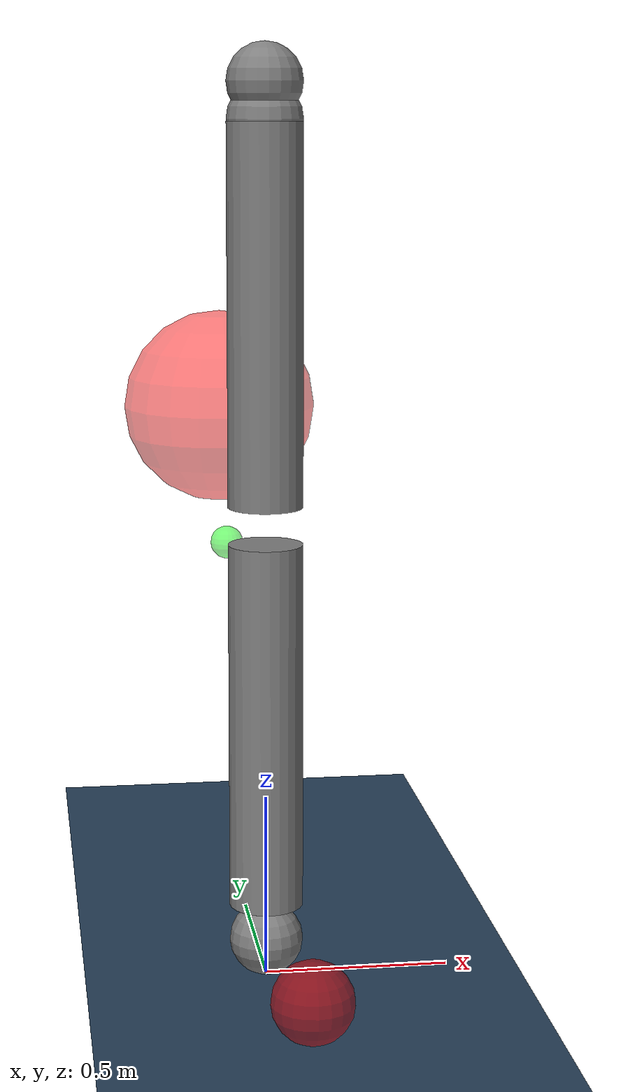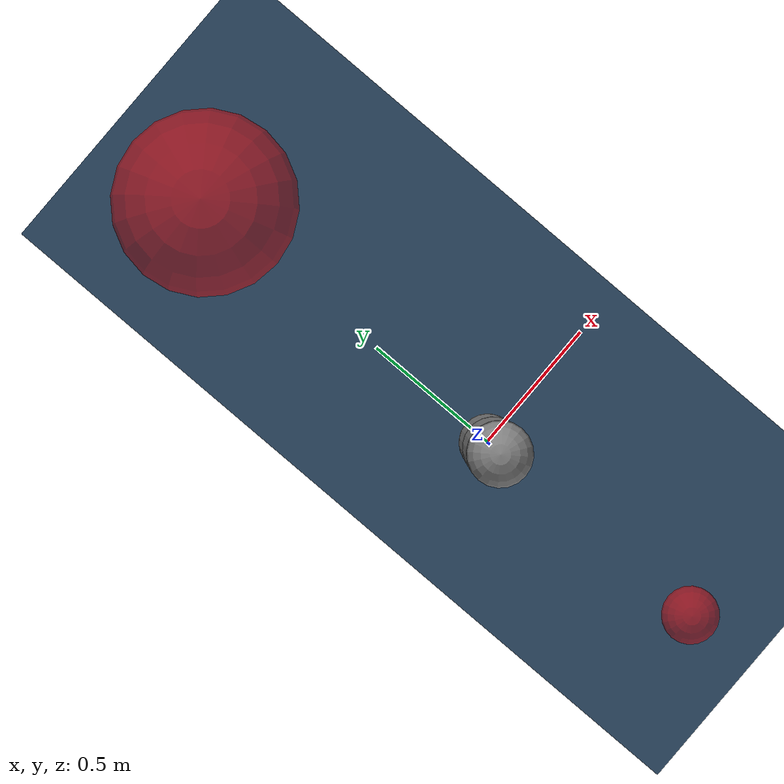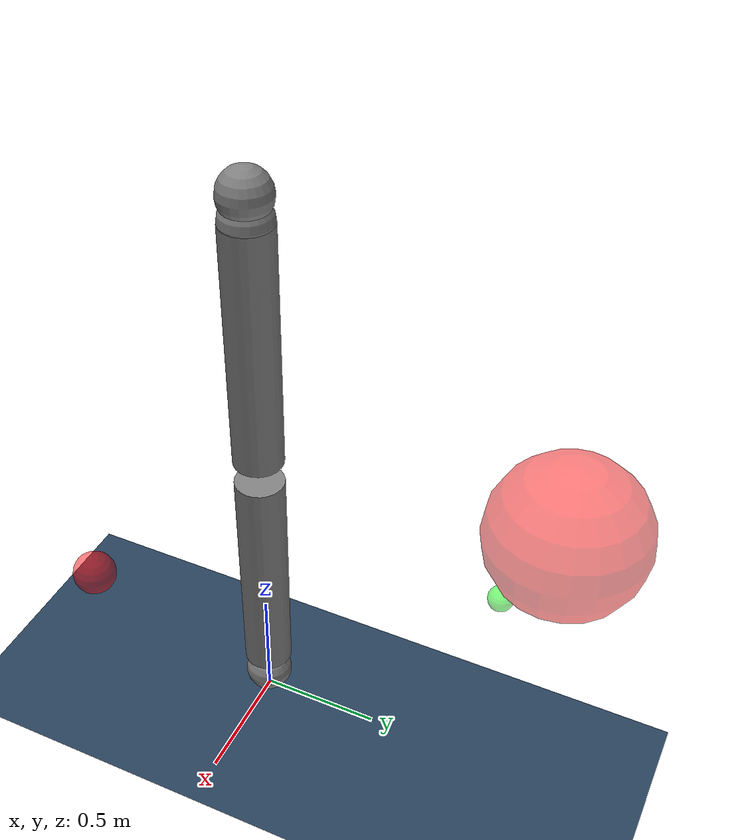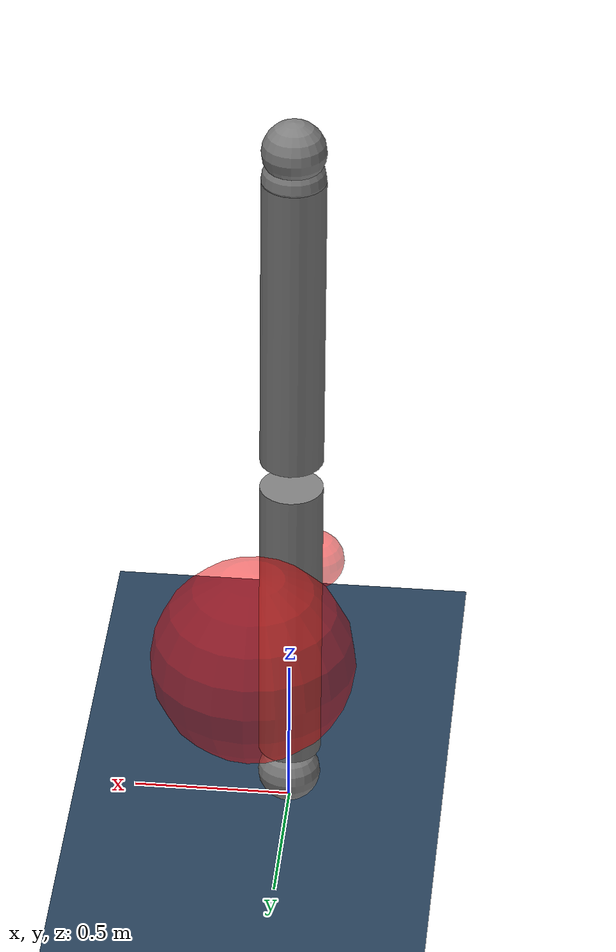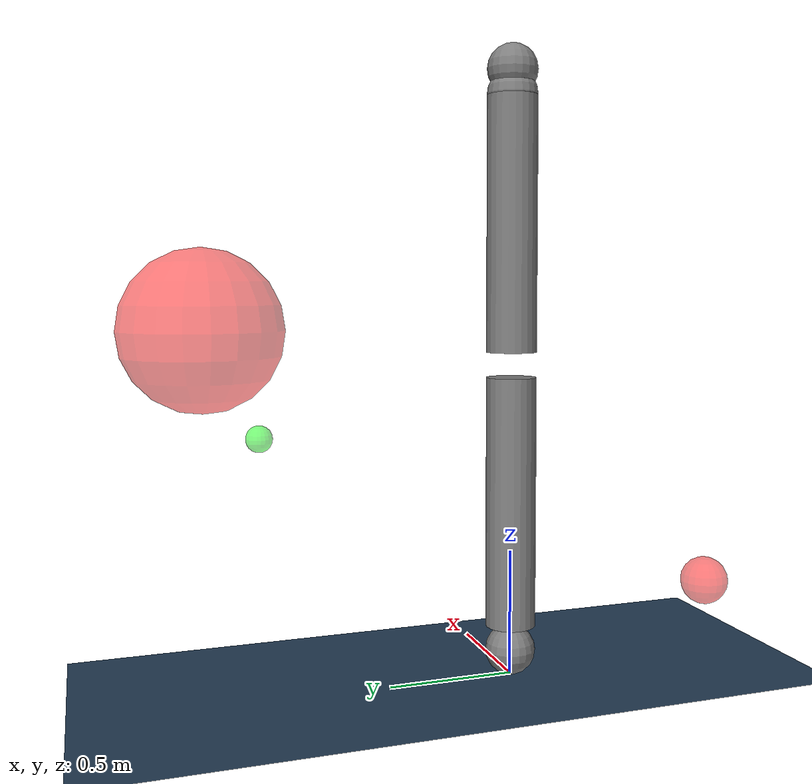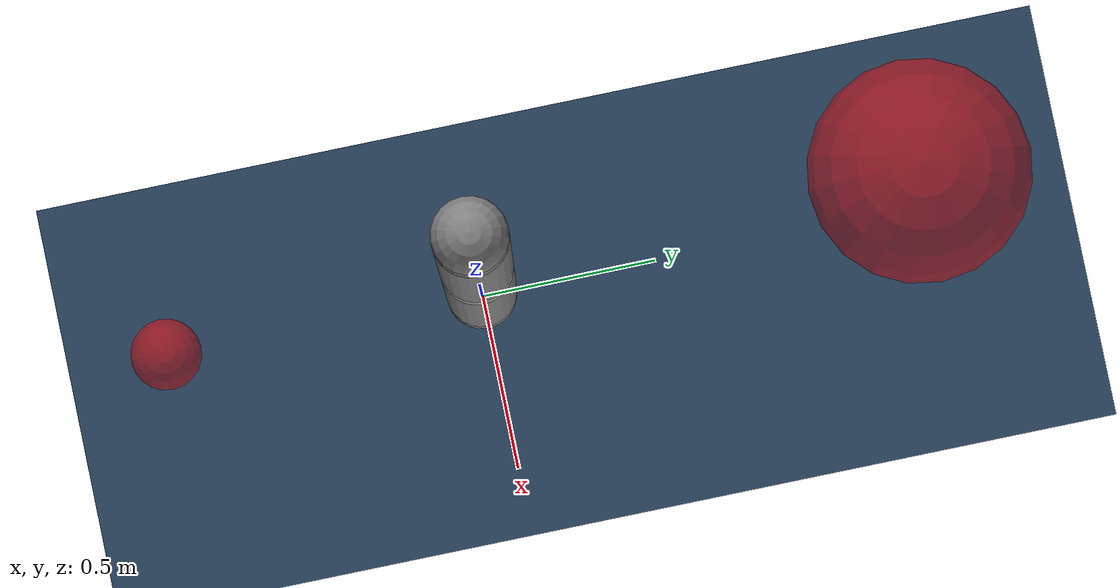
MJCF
<mujoco model="Particle Control">
    <include file="../common.xml"/>
    <size memory="10K"/>

    <custom>
        <!-- agent -->
        <numeric name="task_risk" data="1"/>
        <numeric name="agent_planner" data="0"/>
        <numeric name="agent_horizon" data="0.5"/>
        <numeric name="agent_timestep" data="0.01"/>
        <numeric name="agent_policy_width" data="0.0015"/>
        <numeric name="sampling_spline_points" data="5"/>
        <numeric name="sampling_exploration" data="0.01"/>
        <numeric name="gradient_spline_points" data="5"/>

        <!-- estimator -->
        <numeric name="estimator" data="0"/>
        <numeric name="estimator_sensor_start" data="3"/>
        <numeric name="estimator_number_sensor" data="3"/>
        <numeric name="estimator_timestep" data="0.01"/>
        <numeric name="batch_configuration_length" data="10"/>
        <numeric name="batch_scale_prior" data="1.0e-3"/>
    </custom>

    <sensor>
        <!-- cost -->
        <user name="Position" dim="2" user="0 5.0 0.0 10.0"/>
        <user name="Velocity" dim="2" user="0 0.1 0.0 1.0"/>
        <user name="Control" dim="2" user="0 0.1 0.0 1.0"/>

        <!-- estimator -->
        <jointpos name="x" joint="joint1"/>
        <jointpos name="y" joint="joint2"/>
        <accelerometer name="acc" site="hand"/>

        <!-- trace -->
        <framepos name="trace0" objtype="site" objname="hand"/>

        <!-- residual -->
        <framepos name="position" objtype="site" objname="hand"/>
        <framelinvel name="velocity" objtype="site" objname="hand"/>
    </sensor>

    <visual>
        <headlight diffuse="0.6 0.6 0.6" ambient="0.3 0.3 0.3" specular="0 0 0"/>
        <rgba haze="0.15 0.25 0.35 1"/>
        <global azimuth="120" elevation="-20"/>
    </visual>

    <asset>
        <texture type="skybox" builtin="gradient" rgb1="0.3 0.5 0.7" rgb2="0 0 0" width="512" height="3072"/>
        <texture type="2d" name="groundplane" builtin="checker" mark="edge" rgb1="0.2 0.3 0.4" rgb2="0.1 0.2 0.3"
                 markrgb="0.8 0.8 0.8" width="300" height="300"/>
        <material name="groundplane" texture="groundplane" texuniform="true" texrepeat="5 5" reflectance="0.2"/>
    </asset>

    <worldbody>
        <light pos="0 0 1.5" dir="0 0 -1" directional="true"/>
        <geom name="floor" size="0 0 0.05" type="plane" material="groundplane"/>
        <body name="obstacle_0" pos="0.0 -0.9 0.3">
            <geom type="sphere" name="obstacle_0" size=".1" rgba="0 0 0 0"/>
        </body>
        <body name="obstacle_0_mocap" mocap="true" pos="0.0 -0.9 0.3">
            <geom type="sphere" name="obstacle_0_mocap" size=".1" rgba="1 0 0 .5"/>
        </body>

        <body name="obstacle_1" pos="0.0 1.2 1.4">
            <geom type="sphere" name="obstacle_1" size=".3" rgba="0 0 0 0"/>
        </body>
        <body name="obstacle_1_mocap" mocap="true" pos="0.0 1.2 1.4">
            <geom type="sphere" name="obstacle_1_mocap" size=".3" rgba="1 0 0 .5"/>
        </body>

        <!-- For target dynamics info tracking, which mocap does not provide -->
        <body name="target" pos="0.0 1.0 1.0" quat="1 0 0 0">
            <geom type="sphere" name="target" size=".05" rgba="0 0 0 0"/>
        </body>
        <body name="target_mocap" mocap="true" pos="0.0 1.0 1.0">
            <geom type="sphere" name="target_mocap" size=".05" rgba="0 1 0 .5"/>
        </body>
    </worldbody>

    <include file="planar_2dof.xml"/>
</mujoco>

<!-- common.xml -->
<mujoco>

    <visual>
        <headlight ambient=".4 .4 .4" diffuse=".8 .8 .8" specular="0.1 0.1 0.1"/>
        <map znear=".01"/>
        <quality shadowsize="2048"/>
        <global elevation="-15"/>
    </visual>

    <asset>
        <texture name="blue_grid" type="2d" builtin="checker" rgb1=".02 .14 .44" rgb2=".27 .55 1" width="300" height="300" mark="edge" markrgb="1 1 1"/>
        <material name="blue_grid" texture="blue_grid" texrepeat="1 1" texuniform="true" reflectance=".2"/>

        <texture name="grey_grid" type="2d" builtin="checker" rgb1=".26 .26 .26" rgb2=".6 .6 .6" width="300" height="300" mark="edge" markrgb="1 1 1"/>
        <material name="grey_grid" texture="grey_grid" texrepeat="1 1" texuniform="true" reflectance=".2"/>
        <texture name="skybox" type="skybox" builtin="gradient" rgb1=".66 .79 1" rgb2=".9 .91 .93" width="800" height="800"/>

        <material name="self" rgba=".7 .5 .3 1"/>
        <material name="self_default" rgba=".7 .5 .3 1"/>
        <material name="self_highlight" rgba="0 .5 .3 1"/>
        <material name="effector" rgba=".7 .4 .2 1"/>
        <material name="effector_default" rgba=".7 .4 .2 1"/>
        <material name="effector_highlight" rgba="0 .5 .3 1"/>
        <material name="decoration" rgba=".2 .6 .3 1"/>
        <material name="eye" rgba="0 .2 1 1"/>
        <material name="target" rgba=".6 .3 .3 1"/>
        <material name="target_default" rgba=".6 .3 .3 1"/>
        <material name="target_highlight" rgba=".6 .3 .3 .4"/>
        <material name="site" rgba=".5 .5 .5 .3"/>
    </asset>

    <size memory="1M"/>

    <statistic extent="0.4" center="0.3 0.1 0"/>

    <visual>
        <quality shadowsize="8192"/>
        <global azimuth="180" elevation="-30"/>
    </visual>

    <default>
        <geom friction="1.0"/>
    </default>

    <compiler angle="radian" autolimits="true"/>

    <asset>
        <mesh name="apple" file="../../shared_assets/apple/apple.obj" />
        <mesh name="apple_contact0" file="../../shared_assets/apple/contact0.stl"  />
        <mesh name="apple_contact1" file="../../shared_assets/apple/contact1.stl"  />

        <mesh name="doorknob" file="../../shared_assets/doorknob/doorknob.obj" />

        <mesh name="flashlight" file="../../shared_assets/flashlight/flashlight.obj" />
        <mesh name="flashlight_contact0" file="../../shared_assets/flashlight/contact0.stl"  />
        <mesh name="flashlight_contact1" file="../../shared_assets/flashlight/contact1.stl"  />

        <mesh name="hammer" file="../../shared_assets/hammer/hammer.obj" />
        <mesh name="hammer_contact0" file="../../shared_assets/hammer/contact0.stl"  />
        <mesh name="hammer_contact1" file="../../shared_assets/hammer/contact1.stl"  />

        <mesh name="phone" file="../../shared_assets/phone/phone.obj" />
        <mesh name="phone_contact0" file="../../shared_assets/phone/contact0.stl"  />
        <mesh name="phone_contact1" file="../../shared_assets/phone/contact1.stl"  />
        <mesh name="phone_contact2" file="../../shared_assets/phone/contact2.stl"  />

        <mesh name="stapler" file="../../shared_assets/stapler/stapler.obj" />
        <mesh name="stapler_contact0" file="../../shared_assets/stapler/contact0.stl"  />
        <mesh name="stapler_contact1" file="../../shared_assets/stapler/contact1.stl"  />
        <mesh name="stapler_contact2" file="../../shared_assets/stapler/contact2.stl"  />
        <mesh name="stapler_contact3" file="../../shared_assets/stapler/contact3.stl"  />
        <mesh name="stapler_contact4" file="../../shared_assets/stapler/contact4.stl"  />

        <mesh name="waterbottle" file="../../shared_assets/waterbottle/waterbottle.obj" />
        <mesh name="waterbottle_contact0" file="../../shared_assets/waterbottle/contact0.stl"  />
        <mesh name="waterbottle_contact1" file="../../shared_assets/waterbottle/contact1.stl"  />
    </asset>

</mujoco>

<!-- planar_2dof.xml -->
<mujoco model="planar_2dof">
    <compiler angle="radian"/>

    <option gravity="0 0 0" integrator="implicitfast" timestep="0.01">
        <flag contact="enable"/>
    </option>

    <worldbody>
        <geom size="0.1" pos="0 0 0.1"/>
        <body name="link0" pos="0 0 0.1">
            <inertial pos="0 0 0.5" mass="1" diaginertia="0.0858 0.0858 0.005"/>
            <joint name="joint1" pos="0 0 0" axis="1 0 0" range="-2.8973 2.8973" actuatorfrcrange="-87 87"/>
            <geom size="0.1 0.5" pos="0 0 0.6" type="cylinder"/>
            <body name="link1" pos="0 0 1.1">
                <inertial pos="0 0 0.50007" mass="1.0001" diaginertia="0.0858997 0.0858997 0.00505"/>
                <joint name="joint2" pos="0 0 0" axis="1 0 0" range="-1.7628 1.7628" actuatorfrcrange="-87 87"/>
                <geom size="0.1 0.5" pos="0 0 0.6" type="cylinder"/>
                <geom size="0.1" pos="0 0 1.2"/>
                <body name="link2" pos="0 0 1.1">
                    <inertial pos="0 0 0.005" mass="0.0001" diaginertia="0.00005 0.00005 0.00005"/>
                    <joint name="joint3" pos="0 0 0" axis="1 0 0" range="-1.7628 1.7628" actuatorfrcrange="-87 87"/>
                    <geom name="tip" size="0.1" pos="0 0 0.005" type="sphere"/>
                    <site name="tip" pos="0 0 0.005" size="0.01"/>
                </body>
            </body>
        </body>

        <body name="obstacle_0" mocap="true" pos="0.0 -0.9 0.3" quat="1 0 0 0">
            <geom type="sphere" name="obstacle_0" size=".1" rgba="1 0 0 .5"/>
        </body>
        <body name="obstacle_1" mocap="true" pos="0.0 1.2 1.4" quat="1 0 0 0">
            <geom type="sphere" name="obstacle_1" size=".3" rgba="1 0 0 .5"/>
        </body>

        <body name="target" mocap="true" pos="0.0 0. 0.3" quat="1 0 0 0">
            <geom type="sphere" name="target" size=".01" rgba="1 0 0 .5"/>
        </body>
    </worldbody>

    <visual>
        <headlight diffuse="0.6 0.6 0.6" ambient="0.3 0.3 0.3" specular="0 0 0"/>
        <rgba haze="0.15 0.25 0.35 1"/>
        <global azimuth="120" elevation="-20"/>
    </visual>

    <asset>
        <texture type="skybox" builtin="gradient" rgb1="0.3 0.5 0.7" rgb2="0 0 0" width="512" height="3072"/>
        <texture type="2d" name="groundplane" builtin="checker" mark="edge" rgb1="0.2 0.3 0.4" rgb2="0.1 0.2 0.3"
                 markrgb="0.8 0.8 0.8" width="300" height="300"/>
        <material name="groundplane" texture="groundplane" texuniform="true" texrepeat="5 5" reflectance="0.2"/>
    </asset>

    <worldbody>
        <light pos="0 0 1.5" dir="0 0 -1" directional="true"/>
        <geom name="floor" size="0 0 0.05" type="plane" material="groundplane"/>
    </worldbody>

    <actuator>
        <velocity joint="joint1" ctrlrange="-2.0 2.0" ctrllimited="true" kv="500"/>
        <velocity joint="joint2" ctrlrange="-2.0 2.0" ctrllimited="true" kv="500"/>
    </actuator>
</mujoco>
